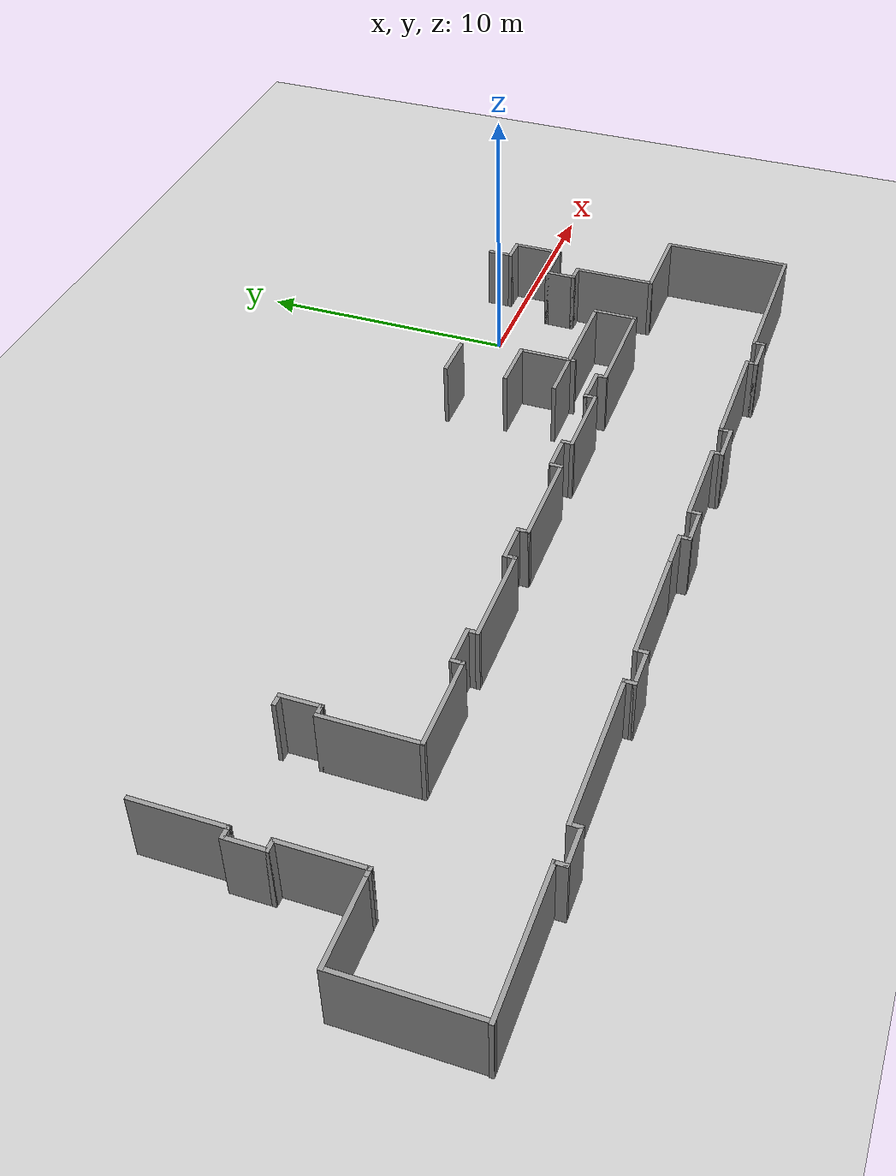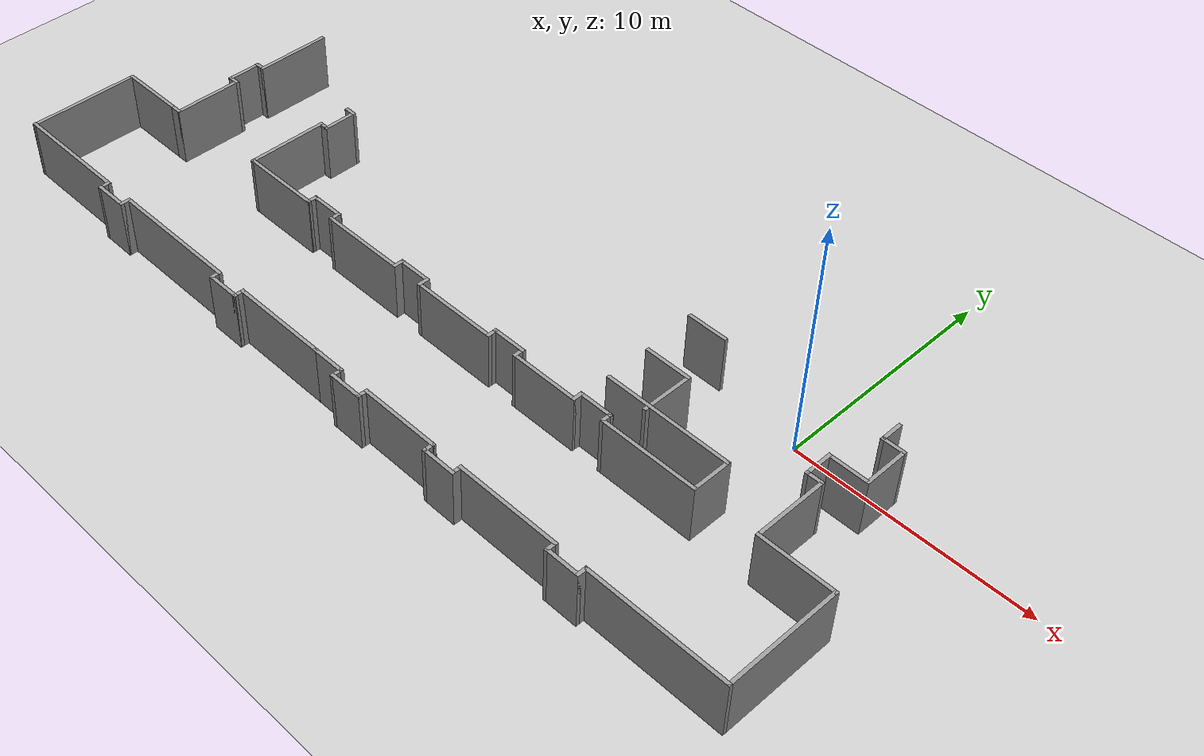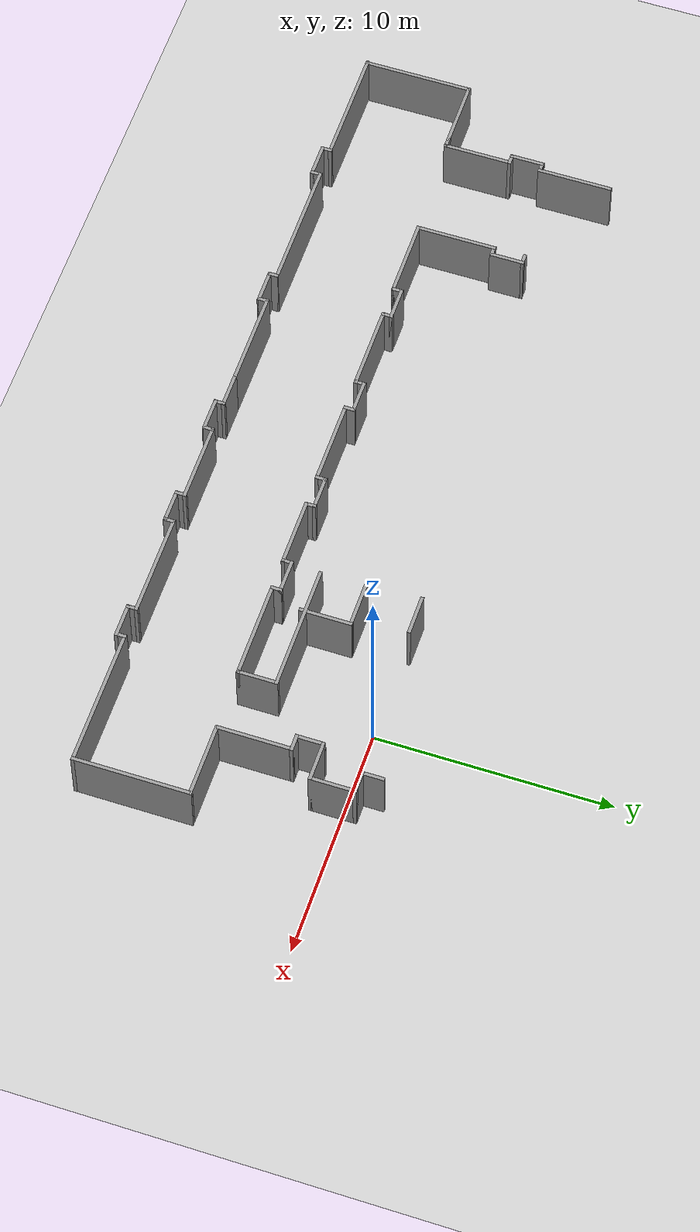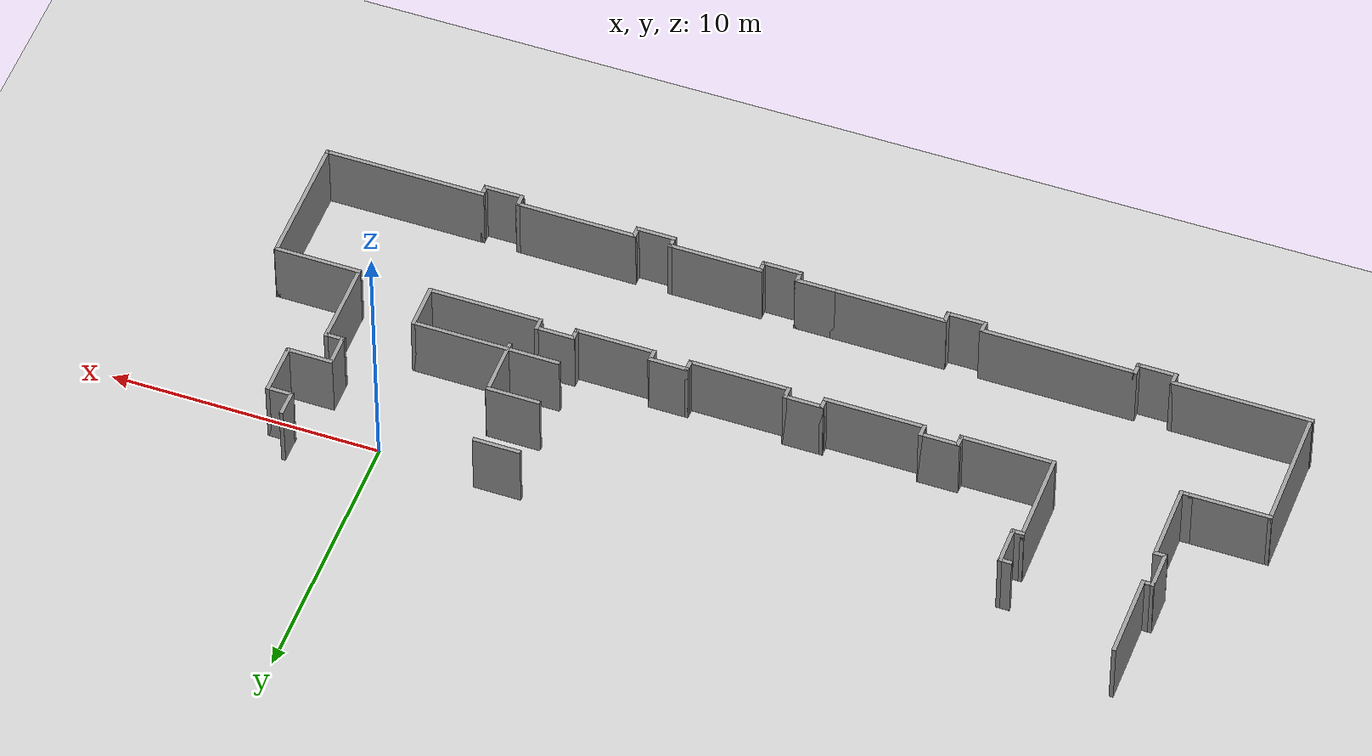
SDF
<sdf version="1.6">
 <world name="default">
  <model name="ground_plane">
   <static>1</static>
   <link name="link">
    <collision name="collision">
     <geometry><plane><normal>0 0 1</normal><size>1 1</size></plane></geometry>
     <surface><friction><ode><mu>100</mu><mu2>50</mu2></ode></friction></surface>
    </collision>
    <visual name="visual">
     <cast_shadows>0</cast_shadows>
     <geometry><plane><normal>0 0 1</normal><size>1 1</size></plane></geometry>
     <material>
      <script><uri>file://media/materials/scripts/gazebo.material</uri><name>Gazebo/Grey</name></script>
     </material>
    </visual>
   </link>
  </model>
  <model name="dstar_khu_5th_floor2">
   <pose>-12.2572 17.3934 0 0 -0 0</pose>
   <link name="Wall_0">
    <collision name="Wall_0_Collision">
     <geometry><box><size>1.75 0.15 2.5</size></box></geometry>
     <pose>0 0 1.25 0 -0 0</pose>
    </collision>
    <visual name="Wall_0_Visual">
     <pose>0 0 1.25 0 -0 0</pose>
     <geometry><box><size>1.75 0.15 2.5</size></box></geometry>
     <material>
      <script><uri>file://media/materials/scripts/gazebo.material</uri><name>Gazebo/Grey</name></script>
      <ambient>1 1 1 1</ambient>
     </material>
     <meta><layer>0</layer></meta>
    </visual>
    <pose>12.4465 -22.1419 0 0 -0 1.5708</pose>
   </link>
   <link name="Wall_1">
    <collision name="Wall_1_Collision">
     <geometry><box><size>5.5 0.15 2.5</size></box></geometry>
     <pose>0 0 1.25 0 -0 0</pose>
    </collision>
    <visual name="Wall_1_Visual">
     <pose>0 0 1.25 0 -0 0</pose>
     <geometry><box><size>5.5 0.15 2.5</size></box></geometry>
     <material>
      <script><uri>file://media/materials/scripts/gazebo.material</uri><name>Gazebo/Grey</name></script>
      <ambient>1 1 1 1</ambient>
     </material>
     <meta><layer>0</layer></meta>
    </visual>
    <pose>9.77148 -21.3419 0 0 -0 3.14159</pose>
   </link>
   <link name="Wall_10">
    <collision name="Wall_10_Collision">
     <geometry><box><size>1 0.15 2.5</size></box></geometry>
     <pose>0 0 1.25 0 -0 0</pose>
    </collision>
    <visual name="Wall_10_Visual">
     <pose>0 0 1.25 0 -0 0</pose>
     <geometry><box><size>1 0.15 2.5</size></box></geometry>
     <material>
      <script><uri>file://media/materials/scripts/gazebo.material</uri><name>Gazebo/Grey</name></script>
      <ambient>1 1 1 1</ambient>
     </material>
     <meta><layer>0</layer></meta>
    </visual>
    <pose>15.6651 -16.8496 0 0 -0 3.14159</pose>
   </link>
   <link name="Wall_100">
    <collision name="Wall_100_Collision">
     <geometry><box><size>3.5 0.15 2.5</size></box></geometry>
     <pose>0 0 1.25 0 -0 0</pose>
    </collision>
    <visual name="Wall_100_Visual">
     <pose>0 0 1.25 0 -0 0</pose>
     <geometry><box><size>3.5 0.15 2.5</size></box></geometry>
     <material>
      <script><uri>file://media/materials/scripts/gazebo.material</uri><name>Gazebo/Grey</name></script>
      <ambient>1 1 1 1</ambient>
     </material>
     <meta><layer>0</layer></meta>
    </visual>
    <pose>-10.4535 -21.2669 0 0 -0 1.5708</pose>
   </link>
   <link name="Wall_101">
    <collision name="Wall_101_Collision">
     <geometry><box><size>0.5 0.15 2.5</size></box></geometry>
     <pose>0 0 1.25 0 -0 0</pose>
    </collision>
    <visual name="Wall_101_Visual">
     <pose>0 0 1.25 0 -0 0</pose>
     <geometry><box><size>0.5 0.15 2.5</size></box></geometry>
     <material>
      <script><uri>file://media/materials/scripts/gazebo.material</uri><name>Gazebo/Grey</name></script>
      <ambient>1 1 1 1</ambient>
     </material>
     <meta><layer>0</layer></meta>
    </visual>
    <pose>-10.2785 -19.5919 0 0 -0 0</pose>
   </link>
   <link name="Wall_104">
    <collision name="Wall_104_Collision">
     <geometry><box><size>1.5 0.15 2.5</size></box></geometry>
     <pose>0 0 1.25 0 -0 0</pose>
    </collision>
    <visual name="Wall_104_Visual">
     <pose>0 0 1.25 0 -0 0</pose>
     <geometry><box><size>1.5 0.15 2.5</size></box></geometry>
     <material>
      <script><uri>file://media/materials/scripts/gazebo.material</uri><name>Gazebo/Grey</name></script>
      <ambient>1 1 1 1</ambient>
     </material>
     <meta><layer>0</layer></meta>
    </visual>
    <pose>-10.1035 -18.9169 0 0 -0 1.5708</pose>
   </link>
   <link name="Wall_105">
    <collision name="Wall_105_Collision">
     <geometry><box><size>0.5 0.15 2.5</size></box></geometry>
     <pose>0 0 1.25 0 -0 0</pose>
    </collision>
    <visual name="Wall_105_Visual">
     <pose>0 0 1.25 0 -0 0</pose>
     <geometry><box><size>0.5 0.15 2.5</size></box></geometry>
     <material>
      <script><uri>file://media/materials/scripts/gazebo.material</uri><name>Gazebo/Grey</name></script>
      <ambient>1 1 1 1</ambient>
     </material>
     <meta><layer>0</layer></meta>
    </visual>
    <pose>-10.2785 -18.2419 0 0 -0 3.14159</pose>
   </link>
   <link name="Wall_11">
    <collision name="Wall_11_Collision">
     <geometry><box><size>1 0.15 2.5</size></box></geometry>
     <pose>0 0 1.25 0 -0 0</pose>
    </collision>
    <visual name="Wall_11_Visual">
     <pose>0 0 1.25 0 -0 0</pose>
     <geometry><box><size>1 0.15 2.5</size></box></geometry>
     <material>
      <script><uri>file://media/materials/scripts/gazebo.material</uri><name>Gazebo/Grey</name></script>
      <ambient>1 1 1 1</ambient>
     </material>
     <meta><layer>0</layer></meta>
    </visual>
    <pose>15.2401 -16.4246 0 0 -0 1.5708</pose>
   </link>
   <link name="Wall_132">
    <collision name="Wall_132_Collision">
     <geometry><box><size>0.5 0.15 2.5</size></box></geometry>
     <pose>0 0 1.25 0 -0 0</pose>
    </collision>
    <visual name="Wall_132_Visual">
     <pose>0 0 1.25 0 -0 0</pose>
     <geometry><box><size>0.5 0.15 2.5</size></box></geometry>
     <material>
      <script><uri>file://media/materials/scripts/gazebo.material</uri><name>Gazebo/Grey</name></script>
      <ambient>1 1 1 1</ambient>
     </material>
     <meta><layer>0</layer></meta>
    </visual>
    <pose>-15.1361 -18.975 0 0 -0 0</pose>
   </link>
   <link name="Wall_133">
    <collision name="Wall_133_Collision">
     <geometry><box><size>3.25 0.15 2.5</size></box></geometry>
     <pose>0 0 1.25 0 -0 0</pose>
    </collision>
    <visual name="Wall_133_Visual">
     <pose>0 0 1.25 0 -0 0</pose>
     <geometry><box><size>3.25 0.15 2.5</size></box></geometry>
     <material>
      <script><uri>file://media/materials/scripts/gazebo.material</uri><name>Gazebo/Grey</name></script>
      <ambient>1 1 1 1</ambient>
     </material>
     <meta><layer>0</layer></meta>
    </visual>
    <pose>-14.9611 -17.425 0 0 -0 1.5708</pose>
   </link>
   <link name="Wall_3">
    <collision name="Wall_3_Collision">
     <geometry><box><size>3.25 0.15 2.5</size></box></geometry>
     <pose>0 0 1.25 0 -0 0</pose>
    </collision>
    <visual name="Wall_3_Visual">
     <pose>0 0 1.25 0 -0 0</pose>
     <geometry><box><size>3.25 0.15 2.5</size></box></geometry>
     <material>
      <script><uri>file://media/materials/scripts/gazebo.material</uri><name>Gazebo/Grey</name></script>
      <ambient>1 1 1 1</ambient>
     </material>
     <meta><layer>0</layer></meta>
    </visual>
    <pose>15.0901 -21.3496 0 0 -0 1.5708</pose>
   </link>
   <link name="Wall_30">
    <collision name="Wall_30_Collision">
     <geometry><box><size>4.25 0.15 2.5</size></box></geometry>
     <pose>0 0 1.25 0 -0 0</pose>
    </collision>
    <visual name="Wall_30_Visual">
     <pose>0 0 1.25 0 -0 0</pose>
     <geometry><box><size>4.25 0.15 2.5</size></box></geometry>
     <material>
      <script><uri>file://media/materials/scripts/gazebo.material</uri><name>Gazebo/Grey</name></script>
      <ambient>1 1 1 1</ambient>
     </material>
     <meta><layer>0</layer></meta>
    </visual>
    <pose>10.3965 -22.9419 0 0 -0 3.14159</pose>
   </link>
   <link name="Wall_31">
    <collision name="Wall_31_Collision">
     <geometry><box><size>0.5 0.15 2.5</size></box></geometry>
     <pose>0 0 1.25 0 -0 0</pose>
    </collision>
    <visual name="Wall_31_Visual">
     <pose>0 0 1.25 0 -0 0</pose>
     <geometry><box><size>0.5 0.15 2.5</size></box></geometry>
     <material>
      <script><uri>file://media/materials/scripts/gazebo.material</uri><name>Gazebo/Grey</name></script>
      <ambient>1 1 1 1</ambient>
     </material>
     <meta><layer>0</layer></meta>
    </visual>
    <pose>8.34648 -22.7669 0 0 -0 1.5708</pose>
   </link>
   <link name="Wall_32">
    <collision name="Wall_32_Collision">
     <geometry><box><size>1.5 0.15 2.5</size></box></geometry>
     <pose>0 0 1.25 0 -0 0</pose>
    </collision>
    <visual name="Wall_32_Visual">
     <pose>0 0 1.25 0 -0 0</pose>
     <geometry><box><size>1.5 0.15 2.5</size></box></geometry>
     <material>
      <script><uri>file://media/materials/scripts/gazebo.material</uri><name>Gazebo/Grey</name></script>
      <ambient>1 1 1 1</ambient>
     </material>
     <meta><layer>0</layer></meta>
    </visual>
    <pose>7.67148 -22.5919 0 0 -0 3.14159</pose>
   </link>
   <link name="Wall_33">
    <collision name="Wall_33_Collision">
     <geometry><box><size>0.5 0.15 2.5</size></box></geometry>
     <pose>0 0 1.25 0 -0 0</pose>
    </collision>
    <visual name="Wall_33_Visual">
     <pose>0 0 1.25 0 -0 0</pose>
     <geometry><box><size>0.5 0.15 2.5</size></box></geometry>
     <material>
      <script><uri>file://media/materials/scripts/gazebo.material</uri><name>Gazebo/Grey</name></script>
      <ambient>1 1 1 1</ambient>
     </material>
     <meta><layer>0</layer></meta>
    </visual>
    <pose>6.99648 -22.7669 0 0 -0 -1.5708</pose>
   </link>
   <link name="Wall_34">
    <collision name="Wall_34_Collision">
     <geometry><box><size>3 0.15 2.5</size></box></geometry>
     <pose>0 0 1.25 0 -0 0</pose>
    </collision>
    <visual name="Wall_34_Visual">
     <pose>0 0 1.25 0 -0 0</pose>
     <geometry><box><size>3 0.15 2.5</size></box></geometry>
     <material>
      <script><uri>file://media/materials/scripts/gazebo.material</uri><name>Gazebo/Grey</name></script>
      <ambient>1 1 1 1</ambient>
     </material>
     <meta><layer>0</layer></meta>
    </visual>
    <pose>5.57148 -22.9419 0 0 -0 3.14159</pose>
   </link>
   <link name="Wall_35">
    <collision name="Wall_35_Collision">
     <geometry><box><size>0.5 0.15 2.5</size></box></geometry>
     <pose>0 0 1.25 0 -0 0</pose>
    </collision>
    <visual name="Wall_35_Visual">
     <pose>0 0 1.25 0 -0 0</pose>
     <geometry><box><size>0.5 0.15 2.5</size></box></geometry>
     <material>
      <script><uri>file://media/materials/scripts/gazebo.material</uri><name>Gazebo/Grey</name></script>
      <ambient>1 1 1 1</ambient>
     </material>
     <meta><layer>0</layer></meta>
    </visual>
    <pose>4.14648 -22.7669 0 0 -0 1.5708</pose>
   </link>
   <link name="Wall_36">
    <collision name="Wall_36_Collision">
     <geometry><box><size>1.5 0.15 2.5</size></box></geometry>
     <pose>0 0 1.25 0 -0 0</pose>
    </collision>
    <visual name="Wall_36_Visual">
     <pose>0 0 1.25 0 -0 0</pose>
     <geometry><box><size>1.5 0.15 2.5</size></box></geometry>
     <material>
      <script><uri>file://media/materials/scripts/gazebo.material</uri><name>Gazebo/Grey</name></script>
      <ambient>1 1 1 1</ambient>
     </material>
     <meta><layer>0</layer></meta>
    </visual>
    <pose>3.47148 -22.5919 0 0 -0 3.14159</pose>
   </link>
   <link name="Wall_37">
    <collision name="Wall_37_Collision">
     <geometry><box><size>0.5 0.15 2.5</size></box></geometry>
     <pose>0 0 1.25 0 -0 0</pose>
    </collision>
    <visual name="Wall_37_Visual">
     <pose>0 0 1.25 0 -0 0</pose>
     <geometry><box><size>0.5 0.15 2.5</size></box></geometry>
     <material>
      <script><uri>file://media/materials/scripts/gazebo.material</uri><name>Gazebo/Grey</name></script>
      <ambient>1 1 1 1</ambient>
     </material>
     <meta><layer>0</layer></meta>
    </visual>
    <pose>2.79648 -22.7669 0 0 -0 -1.5708</pose>
   </link>
   <link name="Wall_38">
    <collision name="Wall_38_Collision">
     <geometry><box><size>3.75 0.15 2.5</size></box></geometry>
     <pose>0 0 1.25 0 -0 0</pose>
    </collision>
    <visual name="Wall_38_Visual">
     <pose>0 0 1.25 0 -0 0</pose>
     <geometry><box><size>3.75 0.15 2.5</size></box></geometry>
     <material>
      <script><uri>file://media/materials/scripts/gazebo.material</uri><name>Gazebo/Grey</name></script>
      <ambient>1 1 1 1</ambient>
     </material>
     <meta><layer>0</layer></meta>
    </visual>
    <pose>0.996483 -22.9419 0 0 -0 3.14159</pose>
   </link>
   <link name="Wall_39">
    <collision name="Wall_39_Collision">
     <geometry><box><size>0.5 0.15 2.5</size></box></geometry>
     <pose>0 0 1.25 0 -0 0</pose>
    </collision>
    <visual name="Wall_39_Visual">
     <pose>0 0 1.25 0 -0 0</pose>
     <geometry><box><size>0.5 0.15 2.5</size></box></geometry>
     <material>
      <script><uri>file://media/materials/scripts/gazebo.material</uri><name>Gazebo/Grey</name></script>
      <ambient>1 1 1 1</ambient>
     </material>
     <meta><layer>0</layer></meta>
    </visual>
    <pose>-0.803517 -22.7669 0 0 -0 1.5708</pose>
   </link>
   <link name="Wall_4">
    <collision name="Wall_4_Collision">
     <geometry><box><size>0.75 0.15 2.5</size></box></geometry>
     <pose>0 0 1.25 0 -0 0</pose>
    </collision>
    <visual name="Wall_4_Visual">
     <pose>0 0 1.25 0 -0 0</pose>
     <geometry><box><size>0.75 0.15 2.5</size></box></geometry>
     <material>
      <script><uri>file://media/materials/scripts/gazebo.material</uri><name>Gazebo/Grey</name></script>
      <ambient>1 1 1 1</ambient>
     </material>
     <meta><layer>0</layer></meta>
    </visual>
    <pose>14.7901 -19.7996 0 0 -0 3.14159</pose>
   </link>
   <link name="Wall_40">
    <collision name="Wall_40_Collision">
     <geometry><box><size>1.5 0.15 2.5</size></box></geometry>
     <pose>0 0 1.25 0 -0 0</pose>
    </collision>
    <visual name="Wall_40_Visual">
     <pose>0 0 1.25 0 -0 0</pose>
     <geometry><box><size>1.5 0.15 2.5</size></box></geometry>
     <material>
      <script><uri>file://media/materials/scripts/gazebo.material</uri><name>Gazebo/Grey</name></script>
      <ambient>1 1 1 1</ambient>
     </material>
     <meta><layer>0</layer></meta>
    </visual>
    <pose>-1.47852 -22.5919 0 0 -0 3.14159</pose>
   </link>
   <link name="Wall_41">
    <collision name="Wall_41_Collision">
     <geometry><box><size>0.5 0.15 2.5</size></box></geometry>
     <pose>0 0 1.25 0 -0 0</pose>
    </collision>
    <visual name="Wall_41_Visual">
     <pose>0 0 1.25 0 -0 0</pose>
     <geometry><box><size>0.5 0.15 2.5</size></box></geometry>
     <material>
      <script><uri>file://media/materials/scripts/gazebo.material</uri><name>Gazebo/Grey</name></script>
      <ambient>1 1 1 1</ambient>
     </material>
     <meta><layer>0</layer></meta>
    </visual>
    <pose>-2.15352 -22.7669 0 0 -0 -1.5708</pose>
   </link>
   <link name="Wall_42">
    <collision name="Wall_42_Collision">
     <geometry><box><size>3.75 0.15 2.5</size></box></geometry>
     <pose>0 0 1.25 0 -0 0</pose>
    </collision>
    <visual name="Wall_42_Visual">
     <pose>0 0 1.25 0 -0 0</pose>
     <geometry><box><size>3.75 0.15 2.5</size></box></geometry>
     <material>
      <script><uri>file://media/materials/scripts/gazebo.material</uri><name>Gazebo/Grey</name></script>
      <ambient>1 1 1 1</ambient>
     </material>
     <meta><layer>0</layer></meta>
    </visual>
    <pose>-3.95352 -22.9419 0 0 -0 3.14159</pose>
   </link>
   <link name="Wall_43">
    <collision name="Wall_43_Collision">
     <geometry><box><size>0.5 0.15 2.5</size></box></geometry>
     <pose>0 0 1.25 0 -0 0</pose>
    </collision>
    <visual name="Wall_43_Visual">
     <pose>0 0 1.25 0 -0 0</pose>
     <geometry><box><size>0.5 0.15 2.5</size></box></geometry>
     <material>
      <script><uri>file://media/materials/scripts/gazebo.material</uri><name>Gazebo/Grey</name></script>
      <ambient>1 1 1 1</ambient>
     </material>
     <meta><layer>0</layer></meta>
    </visual>
    <pose>-5.75352 -22.7669 0 0 -0 1.5708</pose>
   </link>
   <link name="Wall_44">
    <collision name="Wall_44_Collision">
     <geometry><box><size>1.5 0.15 2.5</size></box></geometry>
     <pose>0 0 1.25 0 -0 0</pose>
    </collision>
    <visual name="Wall_44_Visual">
     <pose>0 0 1.25 0 -0 0</pose>
     <geometry><box><size>1.5 0.15 2.5</size></box></geometry>
     <material>
      <script><uri>file://media/materials/scripts/gazebo.material</uri><name>Gazebo/Grey</name></script>
      <ambient>1 1 1 1</ambient>
     </material>
     <meta><layer>0</layer></meta>
    </visual>
    <pose>-6.42852 -22.5919 0 0 -0 3.14159</pose>
   </link>
   <link name="Wall_45">
    <collision name="Wall_45_Collision">
     <geometry><box><size>0.5 0.15 2.5</size></box></geometry>
     <pose>0 0 1.25 0 -0 0</pose>
    </collision>
    <visual name="Wall_45_Visual">
     <pose>0 0 1.25 0 -0 0</pose>
     <geometry><box><size>0.5 0.15 2.5</size></box></geometry>
     <material>
      <script><uri>file://media/materials/scripts/gazebo.material</uri><name>Gazebo/Grey</name></script>
      <ambient>1 1 1 1</ambient>
     </material>
     <meta><layer>0</layer></meta>
    </visual>
    <pose>-7.10352 -22.7669 0 0 -0 -1.5708</pose>
   </link>
   <link name="Wall_46">
    <collision name="Wall_46_Collision">
     <geometry><box><size>3.5 0.15 2.5</size></box></geometry>
     <pose>0 0 1.25 0 -0 0</pose>
    </collision>
    <visual name="Wall_46_Visual">
     <pose>0 0 1.25 0 -0 0</pose>
     <geometry><box><size>3.5 0.15 2.5</size></box></geometry>
     <material>
      <script><uri>file://media/materials/scripts/gazebo.material</uri><name>Gazebo/Grey</name></script>
      <ambient>1 1 1 1</ambient>
     </material>
     <meta><layer>0</layer></meta>
    </visual>
    <pose>-8.77852 -22.9419 0 0 -0 3.14159</pose>
   </link>
   <link name="Wall_48">
    <collision name="Wall_48_Collision">
     <geometry><box><size>3.25 0.15 2.5</size></box></geometry>
     <pose>0 0 1.25 0 -0 0</pose>
    </collision>
    <visual name="Wall_48_Visual">
     <pose>0 0 1.25 0 -0 0</pose>
     <geometry><box><size>3.25 0.15 2.5</size></box></geometry>
     <material>
      <script><uri>file://media/materials/scripts/gazebo.material</uri><name>Gazebo/Grey</name></script>
      <ambient>1 1 1 1</ambient>
     </material>
     <meta><layer>0</layer></meta>
    </visual>
    <pose>16.6401 -22.8996 0 0 -0 0</pose>
   </link>
   <link name="Wall_49">
    <collision name="Wall_49_Collision">
     <geometry><box><size>5 0.15 2.5</size></box></geometry>
     <pose>0 0 1.25 0 -0 0</pose>
    </collision>
    <visual name="Wall_49_Visual">
     <pose>0 0 1.25 0 -0 0</pose>
     <geometry><box><size>5 0.15 2.5</size></box></geometry>
     <material>
      <script><uri>file://media/materials/scripts/gazebo.material</uri><name>Gazebo/Grey</name></script>
      <ambient>1 1 1 1</ambient>
     </material>
     <meta><layer>0</layer></meta>
    </visual>
    <pose>18.1901 -25.3246 0 0 -0 -1.5708</pose>
   </link>
   <link name="Wall_51">
    <collision name="Wall_51_Collision">
     <geometry><box><size>2 0.15 2.5</size></box></geometry>
     <pose>0 0 1.25 0 -0 0</pose>
    </collision>
    <visual name="Wall_51_Visual">
     <pose>0 0 1.25 0 -0 0</pose>
     <geometry><box><size>2 0.15 2.5</size></box></geometry>
     <material>
      <script><uri>file://media/materials/scripts/gazebo.material</uri><name>Gazebo/Grey</name></script>
      <ambient>1 1 1 1</ambient>
     </material>
     <meta><layer>0</layer></meta>
    </visual>
    <pose>8.03255 -19.4262 0 0 -0 0</pose>
   </link>
   <link name="Wall_52">
    <collision name="Wall_52_Collision">
     <geometry><box><size>2.25 0.15 2.5</size></box></geometry>
     <pose>0 0 1.25 0 -0 0</pose>
    </collision>
    <visual name="Wall_52_Visual">
     <pose>0 0 1.25 0 -0 0</pose>
     <geometry><box><size>2.25 0.15 2.5</size></box></geometry>
     <material>
      <script><uri>file://media/materials/scripts/gazebo.material</uri><name>Gazebo/Grey</name></script>
      <ambient>1 1 1 1</ambient>
     </material>
     <meta><layer>0</layer></meta>
    </visual>
    <pose>8.95755 -20.4762 0 0 -0 -1.5708</pose>
   </link>
   <link name="Wall_54">
    <collision name="Wall_54_Collision">
     <geometry><box><size>1.75 0.15 2.5</size></box></geometry>
     <pose>0 0 1.25 0 -0 0</pose>
    </collision>
    <visual name="Wall_54_Visual">
     <pose>0 0 1.25 0 -0 0</pose>
     <geometry><box><size>1.75 0.15 2.5</size></box></geometry>
     <material>
      <script><uri>file://media/materials/scripts/gazebo.material</uri><name>Gazebo/Grey</name></script>
      <ambient>1 1 1 1</ambient>
     </material>
     <meta><layer>0</layer></meta>
    </visual>
    <pose>7.75328 -17.1121 0 0 -0 0</pose>
   </link>
   <link name="Wall_60">
    <collision name="Wall_60_Collision">
     <geometry><box><size>6 0.15 2.5</size></box></geometry>
     <pose>0 0 1.25 0 -0 0</pose>
    </collision>
    <visual name="Wall_60_Visual">
     <pose>0 0 1.25 0 -0 0</pose>
     <geometry><box><size>6 0.15 2.5</size></box></geometry>
     <material>
      <script><uri>file://media/materials/scripts/gazebo.material</uri><name>Gazebo/Grey</name></script>
      <ambient>1 1 1 1</ambient>
     </material>
     <meta><layer>0</layer></meta>
    </visual>
    <pose>15.2651 -27.7496 0 0 -0 3.14159</pose>
   </link>
   <link name="Wall_63">
    <collision name="Wall_63_Collision">
     <geometry><box><size>0.5 0.15 2.5</size></box></geometry>
     <pose>0 0 1.25 0 -0 0</pose>
    </collision>
    <visual name="Wall_63_Visual">
     <pose>0 0 1.25 0 -0 0</pose>
     <geometry><box><size>0.5 0.15 2.5</size></box></geometry>
     <material>
      <script><uri>file://media/materials/scripts/gazebo.material</uri><name>Gazebo/Grey</name></script>
      <ambient>1 1 1 1</ambient>
     </material>
     <meta><layer>0</layer></meta>
    </visual>
    <pose>12.3401 -27.9246 0 0 -0 -1.5708</pose>
   </link>
   <link name="Wall_64">
    <collision name="Wall_64_Collision">
     <geometry><box><size>1.5 0.15 2.5</size></box></geometry>
     <pose>0 0 1.25 0 -0 0</pose>
    </collision>
    <visual name="Wall_64_Visual">
     <pose>0 0 1.25 0 -0 0</pose>
     <geometry><box><size>1.5 0.15 2.5</size></box></geometry>
     <material>
      <script><uri>file://media/materials/scripts/gazebo.material</uri><name>Gazebo/Grey</name></script>
      <ambient>1 1 1 1</ambient>
     </material>
     <meta><layer>0</layer></meta>
    </visual>
    <pose>11.6651 -28.0996 0 0 -0 3.14159</pose>
   </link>
   <link name="Wall_65">
    <collision name="Wall_65_Collision">
     <geometry><box><size>0.5 0.15 2.5</size></box></geometry>
     <pose>0 0 1.25 0 -0 0</pose>
    </collision>
    <visual name="Wall_65_Visual">
     <pose>0 0 1.25 0 -0 0</pose>
     <geometry><box><size>0.5 0.15 2.5</size></box></geometry>
     <material>
      <script><uri>file://media/materials/scripts/gazebo.material</uri><name>Gazebo/Grey</name></script>
      <ambient>1 1 1 1</ambient>
     </material>
     <meta><layer>0</layer></meta>
    </visual>
    <pose>10.9901 -27.9246 0 0 -0 1.5708</pose>
   </link>
   <link name="Wall_66">
    <collision name="Wall_66_Collision">
     <geometry><box><size>4.5 0.15 2.5</size></box></geometry>
     <pose>0 0 1.25 0 -0 0</pose>
    </collision>
    <visual name="Wall_66_Visual">
     <pose>0 0 1.25 0 -0 0</pose>
     <geometry><box><size>4.5 0.15 2.5</size></box></geometry>
     <material>
      <script><uri>file://media/materials/scripts/gazebo.material</uri><name>Gazebo/Grey</name></script>
      <ambient>1 1 1 1</ambient>
     </material>
     <meta><layer>0</layer></meta>
    </visual>
    <pose>8.81513 -27.7496 0 0 -0 3.14159</pose>
   </link>
   <link name="Wall_67">
    <collision name="Wall_67_Collision">
     <geometry><box><size>0.5 0.15 2.5</size></box></geometry>
     <pose>0 0 1.25 0 -0 0</pose>
    </collision>
    <visual name="Wall_67_Visual">
     <pose>0 0 1.25 0 -0 0</pose>
     <geometry><box><size>0.5 0.15 2.5</size></box></geometry>
     <material>
      <script><uri>file://media/materials/scripts/gazebo.material</uri><name>Gazebo/Grey</name></script>
      <ambient>1 1 1 1</ambient>
     </material>
     <meta><layer>0</layer></meta>
    </visual>
    <pose>6.64013 -27.9246 0 0 -0 -1.5708</pose>
   </link>
   <link name="Wall_68">
    <collision name="Wall_68_Collision">
     <geometry><box><size>1.5 0.15 2.5</size></box></geometry>
     <pose>0 0 1.25 0 -0 0</pose>
    </collision>
    <visual name="Wall_68_Visual">
     <pose>0 0 1.25 0 -0 0</pose>
     <geometry><box><size>1.5 0.15 2.5</size></box></geometry>
     <material>
      <script><uri>file://media/materials/scripts/gazebo.material</uri><name>Gazebo/Grey</name></script>
      <ambient>1 1 1 1</ambient>
     </material>
     <meta><layer>0</layer></meta>
    </visual>
    <pose>5.96512 -28.0996 0 0 -0 3.14159</pose>
   </link>
   <link name="Wall_69">
    <collision name="Wall_69_Collision">
     <geometry><box><size>0.5 0.15 2.5</size></box></geometry>
     <pose>0 0 1.25 0 -0 0</pose>
    </collision>
    <visual name="Wall_69_Visual">
     <pose>0 0 1.25 0 -0 0</pose>
     <geometry><box><size>0.5 0.15 2.5</size></box></geometry>
     <material>
      <script><uri>file://media/materials/scripts/gazebo.material</uri><name>Gazebo/Grey</name></script>
      <ambient>1 1 1 1</ambient>
     </material>
     <meta><layer>0</layer></meta>
    </visual>
    <pose>5.29012 -27.9246 0 0 -0 1.5708</pose>
   </link>
   <link name="Wall_7">
    <collision name="Wall_7_Collision">
     <geometry><box><size>1.25 0.15 2.5</size></box></geometry>
     <pose>0 0 1.25 0 -0 0</pose>
    </collision>
    <visual name="Wall_7_Visual">
     <pose>0 0 1.25 0 -0 0</pose>
     <geometry><box><size>1.25 0.15 2.5</size></box></geometry>
     <material>
      <script><uri>file://media/materials/scripts/gazebo.material</uri><name>Gazebo/Grey</name></script>
      <ambient>1 1 1 1</ambient>
     </material>
     <meta><layer>0</layer></meta>
    </visual>
    <pose>14.4901 -19.2496 0 0 -0 1.5708</pose>
   </link>
   <link name="Wall_70">
    <collision name="Wall_70_Collision">
     <geometry><box><size>3.5 0.15 2.5</size></box></geometry>
     <pose>0 0 1.25 0 -0 0</pose>
    </collision>
    <visual name="Wall_70_Visual">
     <pose>0 0 1.25 0 -0 0</pose>
     <geometry><box><size>3.5 0.15 2.5</size></box></geometry>
     <material>
      <script><uri>file://media/materials/scripts/gazebo.material</uri><name>Gazebo/Grey</name></script>
      <ambient>1 1 1 1</ambient>
     </material>
     <meta><layer>0</layer></meta>
    </visual>
    <pose>3.61512 -27.7496 0 0 -0 3.14159</pose>
   </link>
   <link name="Wall_71">
    <collision name="Wall_71_Collision">
     <geometry><box><size>0.5 0.15 2.5</size></box></geometry>
     <pose>0 0 1.25 0 -0 0</pose>
    </collision>
    <visual name="Wall_71_Visual">
     <pose>0 0 1.25 0 -0 0</pose>
     <geometry><box><size>0.5 0.15 2.5</size></box></geometry>
     <material>
      <script><uri>file://media/materials/scripts/gazebo.material</uri><name>Gazebo/Grey</name></script>
      <ambient>1 1 1 1</ambient>
     </material>
     <meta><layer>0</layer></meta>
    </visual>
    <pose>1.94013 -27.9246 0 0 -0 -1.5708</pose>
   </link>
   <link name="Wall_72">
    <collision name="Wall_72_Collision">
     <geometry><box><size>1.5 0.15 2.5</size></box></geometry>
     <pose>0 0 1.25 0 -0 0</pose>
    </collision>
    <visual name="Wall_72_Visual">
     <pose>0 0 1.25 0 -0 0</pose>
     <geometry><box><size>1.5 0.15 2.5</size></box></geometry>
     <material>
      <script><uri>file://media/materials/scripts/gazebo.material</uri><name>Gazebo/Grey</name></script>
      <ambient>1 1 1 1</ambient>
     </material>
     <meta><layer>0</layer></meta>
    </visual>
    <pose>1.26513 -28.0996 0 0 -0 3.14159</pose>
   </link>
   <link name="Wall_73">
    <collision name="Wall_73_Collision">
     <geometry><box><size>0.5 0.15 2.5</size></box></geometry>
     <pose>0 0 1.25 0 -0 0</pose>
    </collision>
    <visual name="Wall_73_Visual">
     <pose>0 0 1.25 0 -0 0</pose>
     <geometry><box><size>0.5 0.15 2.5</size></box></geometry>
     <material>
      <script><uri>file://media/materials/scripts/gazebo.material</uri><name>Gazebo/Grey</name></script>
      <ambient>1 1 1 1</ambient>
     </material>
     <meta><layer>0</layer></meta>
    </visual>
    <pose>0.590125 -27.9246 0 0 -0 1.5708</pose>
   </link>
   <link name="Wall_74">
    <collision name="Wall_74_Collision">
     <geometry><box><size>1.5 0.15 2.5</size></box></geometry>
     <pose>0 0 1.25 0 -0 0</pose>
    </collision>
    <visual name="Wall_74_Visual">
     <pose>0 0 1.25 0 -0 0</pose>
     <geometry><box><size>1.5 0.15 2.5</size></box></geometry>
     <material>
      <script><uri>file://media/materials/scripts/gazebo.material</uri><name>Gazebo/Grey</name></script>
      <ambient>1 1 1 1</ambient>
     </material>
     <meta><layer>0</layer></meta>
    </visual>
    <pose>-0.084875 -27.7496 0 0 -0 3.14159</pose>
   </link>
   <link name="Wall_76">
    <collision name="Wall_76_Collision">
     <geometry><box><size>4.25 0.15 2.5</size></box></geometry>
     <pose>0 0 1.25 0 -0 0</pose>
    </collision>
    <visual name="Wall_76_Visual">
     <pose>0 0 1.25 0 -0 0</pose>
     <geometry><box><size>4.25 0.15 2.5</size></box></geometry>
     <material>
      <script><uri>file://media/materials/scripts/gazebo.material</uri><name>Gazebo/Grey</name></script>
      <ambient>1 1 1 1</ambient>
     </material>
     <meta><layer>0</layer></meta>
    </visual>
    <pose>-2.80987 -27.7496 0 0 -0 3.14159</pose>
   </link>
   <link name="Wall_78">
    <collision name="Wall_78_Collision">
     <geometry><box><size>0.5 0.15 2.5</size></box></geometry>
     <pose>0 0 1.25 0 -0 0</pose>
    </collision>
    <visual name="Wall_78_Visual">
     <pose>0 0 1.25 0 -0 0</pose>
     <geometry><box><size>0.5 0.15 2.5</size></box></geometry>
     <material>
      <script><uri>file://media/materials/scripts/gazebo.material</uri><name>Gazebo/Grey</name></script>
      <ambient>1 1 1 1</ambient>
     </material>
     <meta><layer>0</layer></meta>
    </visual>
    <pose>-4.85987 -27.9246 0 0 -0 -1.5708</pose>
   </link>
   <link name="Wall_79">
    <collision name="Wall_79_Collision">
     <geometry><box><size>1.5 0.15 2.5</size></box></geometry>
     <pose>0 0 1.25 0 -0 0</pose>
    </collision>
    <visual name="Wall_79_Visual">
     <pose>0 0 1.25 0 -0 0</pose>
     <geometry><box><size>1.5 0.15 2.5</size></box></geometry>
     <material>
      <script><uri>file://media/materials/scripts/gazebo.material</uri><name>Gazebo/Grey</name></script>
      <ambient>1 1 1 1</ambient>
     </material>
     <meta><layer>0</layer></meta>
    </visual>
    <pose>-5.53487 -28.0996 0 0 -0 3.14159</pose>
   </link>
   <link name="Wall_8">
    <collision name="Wall_8_Collision">
     <geometry><box><size>1.75 0.15 2.5</size></box></geometry>
     <pose>0 0 1.25 0 -0 0</pose>
    </collision>
    <visual name="Wall_8_Visual">
     <pose>0 0 1.25 0 -0 0</pose>
     <geometry><box><size>1.75 0.15 2.5</size></box></geometry>
     <material>
      <script><uri>file://media/materials/scripts/gazebo.material</uri><name>Gazebo/Grey</name></script>
      <ambient>1 1 1 1</ambient>
     </material>
     <meta><layer>0</layer></meta>
    </visual>
    <pose>15.2901 -18.6996 0 0 -0 0</pose>
   </link>
   <link name="Wall_80">
    <collision name="Wall_80_Collision">
     <geometry><box><size>0.449156 0.15 2.5</size></box></geometry>
     <pose>0 0 1.25 0 -0 0</pose>
    </collision>
    <visual name="Wall_80_Visual">
     <pose>0 0 1.25 0 -0 0</pose>
     <geometry><box><size>0.449156 0.15 2.5</size></box></geometry>
     <material>
      <script><uri>file://media/materials/scripts/gazebo.material</uri><name>Gazebo/Grey</name></script>
      <ambient>1 1 1 1</ambient>
     </material>
     <meta><layer>0</layer></meta>
    </visual>
    <pose>-6.20987 -27.95 0 0 -0 1.5708</pose>
   </link>
   <link name="Wall_81">
    <collision name="Wall_81_Collision">
     <geometry><box><size>5.75 0.15 2.5</size></box></geometry>
     <pose>0 0 1.25 0 -0 0</pose>
    </collision>
    <visual name="Wall_81_Visual">
     <pose>0 0 1.25 0 -0 0</pose>
     <geometry><box><size>5.75 0.15 2.5</size></box></geometry>
     <material>
      <script><uri>file://media/materials/scripts/gazebo.material</uri><name>Gazebo/Grey</name></script>
      <ambient>1 1 1 1</ambient>
     </material>
     <meta><layer>0</layer></meta>
    </visual>
    <pose>-9.00987 -27.775 0 0 -0 3.14159</pose>
   </link>
   <link name="Wall_83">
    <collision name="Wall_83_Collision">
     <geometry><box><size>0.5 0.15 2.5</size></box></geometry>
     <pose>0 0 1.25 0 -0 0</pose>
    </collision>
    <visual name="Wall_83_Visual">
     <pose>0 0 1.25 0 -0 0</pose>
     <geometry><box><size>0.5 0.15 2.5</size></box></geometry>
     <material>
      <script><uri>file://media/materials/scripts/gazebo.material</uri><name>Gazebo/Grey</name></script>
      <ambient>1 1 1 1</ambient>
     </material>
     <meta><layer>0</layer></meta>
    </visual>
    <pose>-11.8099 -27.95 0 0 -0 -1.5708</pose>
   </link>
   <link name="Wall_84">
    <collision name="Wall_84_Collision">
     <geometry><box><size>1.5 0.15 2.5</size></box></geometry>
     <pose>0 0 1.25 0 -0 0</pose>
    </collision>
    <visual name="Wall_84_Visual">
     <pose>0 0 1.25 0 -0 0</pose>
     <geometry><box><size>1.5 0.15 2.5</size></box></geometry>
     <material>
      <script><uri>file://media/materials/scripts/gazebo.material</uri><name>Gazebo/Grey</name></script>
      <ambient>1 1 1 1</ambient>
     </material>
     <meta><layer>0</layer></meta>
    </visual>
    <pose>-12.4849 -28.125 0 0 -0 3.14159</pose>
   </link>
   <link name="Wall_85">
    <collision name="Wall_85_Collision">
     <geometry><box><size>0.5 0.15 2.5</size></box></geometry>
     <pose>0 0 1.25 0 -0 0</pose>
    </collision>
    <visual name="Wall_85_Visual">
     <pose>0 0 1.25 0 -0 0</pose>
     <geometry><box><size>0.5 0.15 2.5</size></box></geometry>
     <material>
      <script><uri>file://media/materials/scripts/gazebo.material</uri><name>Gazebo/Grey</name></script>
      <ambient>1 1 1 1</ambient>
     </material>
     <meta><layer>0</layer></meta>
    </visual>
    <pose>-13.1599 -27.95 0 0 -0 1.5708</pose>
   </link>
   <link name="Wall_86">
    <collision name="Wall_86_Collision">
     <geometry><box><size>5.18025 0.15 2.5</size></box></geometry>
     <pose>0 0 1.25 0 -0 0</pose>
    </collision>
    <visual name="Wall_86_Visual">
     <pose>0 0 1.25 0 -0 0</pose>
     <geometry><box><size>5.18025 0.15 2.5</size></box></geometry>
     <material>
      <script><uri>file://media/materials/scripts/gazebo.material</uri><name>Gazebo/Grey</name></script>
      <ambient>1 1 1 1</ambient>
     </material>
     <meta><layer>0</layer></meta>
    </visual>
    <pose>-15.675 -27.775 0 0 -0 3.14159</pose>
   </link>
   <link name="Wall_88">
    <collision name="Wall_88_Collision">
     <geometry><box><size>4.75 0.15 2.5</size></box></geometry>
     <pose>0 0 1.25 0 -0 0</pose>
    </collision>
    <visual name="Wall_88_Visual">
     <pose>0 0 1.25 0 -0 0</pose>
     <geometry><box><size>4.75 0.15 2.5</size></box></geometry>
     <material>
      <script><uri>file://media/materials/scripts/gazebo.material</uri><name>Gazebo/Grey</name></script>
      <ambient>1 1 1 1</ambient>
     </material>
     <meta><layer>0</layer></meta>
    </visual>
    <pose>-18.1611 -25.475 0 0 -0 1.5708</pose>
   </link>
   <link name="Wall_9">
    <collision name="Wall_9_Collision">
     <geometry><box><size>2 0.15 2.5</size></box></geometry>
     <pose>0 0 1.25 0 -0 0</pose>
    </collision>
    <visual name="Wall_9_Visual">
     <pose>0 0 1.25 0 -0 0</pose>
     <geometry><box><size>2 0.15 2.5</size></box></geometry>
     <material>
      <script><uri>file://media/materials/scripts/gazebo.material</uri><name>Gazebo/Grey</name></script>
      <ambient>1 1 1 1</ambient>
     </material>
     <meta><layer>0</layer></meta>
    </visual>
    <pose>16.0901 -17.7746 0 0 -0 1.5708</pose>
   </link>
   <link name="Wall_90">
    <collision name="Wall_90_Collision">
     <geometry><box><size>3 0.15 2.5</size></box></geometry>
     <pose>0 0 1.25 0 -0 0</pose>
    </collision>
    <visual name="Wall_90_Visual">
     <pose>0 0 1.25 0 -0 0</pose>
     <geometry><box><size>3 0.15 2.5</size></box></geometry>
     <material>
      <script><uri>file://media/materials/scripts/gazebo.material</uri><name>Gazebo/Grey</name></script>
      <ambient>1 1 1 1</ambient>
     </material>
     <meta><layer>0</layer></meta>
    </visual>
    <pose>-16.7361 -23.175 0 0 -0 0</pose>
   </link>
   <link name="Wall_93">
    <collision name="Wall_93_Collision">
     <geometry><box><size>0.5 0.15 2.5</size></box></geometry>
     <pose>0 0 1.25 0 -0 0</pose>
    </collision>
    <visual name="Wall_93_Visual">
     <pose>0 0 1.25 0 -0 0</pose>
     <geometry><box><size>0.5 0.15 2.5</size></box></geometry>
     <material>
      <script><uri>file://media/materials/scripts/gazebo.material</uri><name>Gazebo/Grey</name></script>
      <ambient>1 1 1 1</ambient>
     </material>
     <meta><layer>0</layer></meta>
    </visual>
    <pose>-15.1361 -23.175 0 0 -0 0</pose>
   </link>
   <link name="Wall_94">
    <collision name="Wall_94_Collision">
     <geometry><box><size>3 0.15 2.5</size></box></geometry>
     <pose>0 0 1.25 0 -0 0</pose>
    </collision>
    <visual name="Wall_94_Visual">
     <pose>0 0 1.25 0 -0 0</pose>
     <geometry><box><size>3 0.15 2.5</size></box></geometry>
     <material>
      <script><uri>file://media/materials/scripts/gazebo.material</uri><name>Gazebo/Grey</name></script>
      <ambient>1 1 1 1</ambient>
     </material>
     <meta><layer>0</layer></meta>
    </visual>
    <pose>-14.9611 -21.75 0 0 -0 1.5708</pose>
   </link>
   <link name="Wall_95">
    <collision name="Wall_95_Collision">
     <geometry><box><size>0.5 0.15 2.5</size></box></geometry>
     <pose>0 0 1.25 0 -0 0</pose>
    </collision>
    <visual name="Wall_95_Visual">
     <pose>0 0 1.25 0 -0 0</pose>
     <geometry><box><size>0.5 0.15 2.5</size></box></geometry>
     <material>
      <script><uri>file://media/materials/scripts/gazebo.material</uri><name>Gazebo/Grey</name></script>
      <ambient>1 1 1 1</ambient>
     </material>
     <meta><layer>0</layer></meta>
    </visual>
    <pose>-15.1361 -20.325 0 0 -0 3.14159</pose>
   </link>
   <link name="Wall_97">
    <collision name="Wall_97_Collision">
     <geometry><box><size>1.5 0.15 2.5</size></box></geometry>
     <pose>0 0 1.25 0 -0 0</pose>
    </collision>
    <visual name="Wall_97_Visual">
     <pose>0 0 1.25 0 -0 0</pose>
     <geometry><box><size>1.5 0.15 2.5</size></box></geometry>
     <material>
      <script><uri>file://media/materials/scripts/gazebo.material</uri><name>Gazebo/Grey</name></script>
      <ambient>1 1 1 1</ambient>
     </material>
     <meta><layer>0</layer></meta>
    </visual>
    <pose>-15.3111 -19.65 0 0 -0 1.5708</pose>
   </link>
   <static>1</static>
  </model>
 </world>
</sdf>
